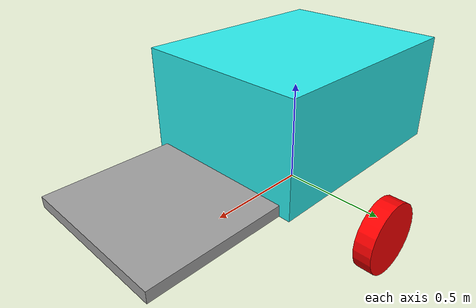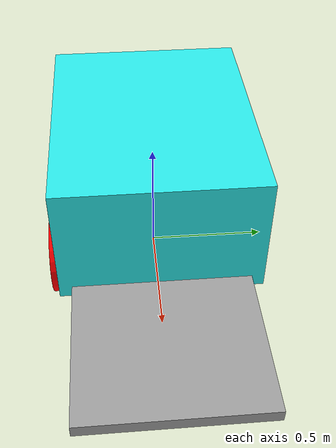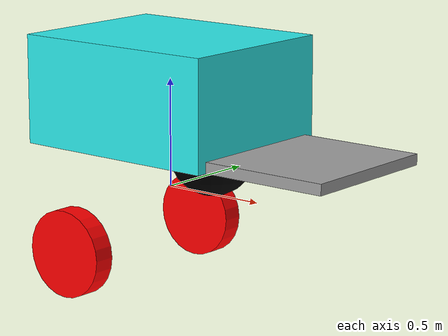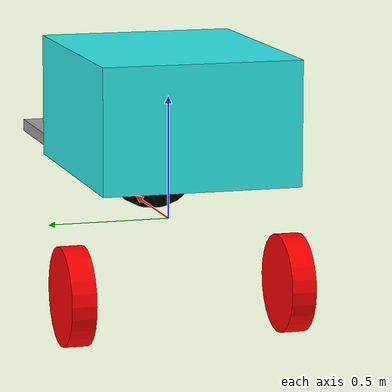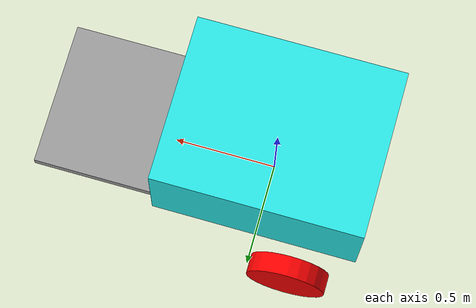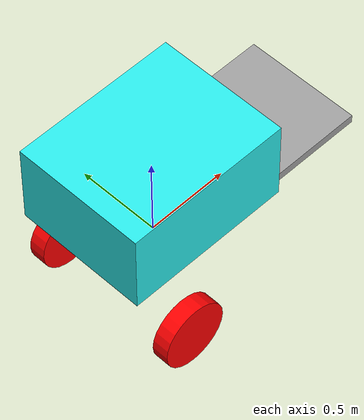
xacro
<?xml version="1.0"?>
<robot xmlns:xacro="http://www.ros.org/wiki/xacro">
    <xacro:include filename="inertial_macros.xacro" />

    <xacro:property name="chassis_m" value="20" />
    <xacro:property name="wheel_m" value="4" />
    <xacro:property name="caster_m" value="4" />
    <xacro:property name="fork_m" value="5" />
    <xacro:property name="chassis_x" value="1" />
    <xacro:property name="chassis_y" value="0.8" />
    <xacro:property name="chassis_z" value="0.5" />
    <xacro:property name="chassis_h" value="0.2" />
    <xacro:property name="wheel_l" value="0.1" />
    <xacro:property name="wheel_r" value="0.2" />
    <xacro:property name="caster_r" value="0.2" />
    <xacro:property name="fork_x" value="0.6" />
    <xacro:property name="fork_y" value="0.7" />
    <xacro:property name="fork_z" value="0.05" />
    <xacro:property name="fork_h" value="0.2" />

    <!-- BASE LINK -->

    <link name="base_link">

    </link>

    <!-- BASE FOOTPRINT LINK -->

    <link name="base_footprint">

    </link>
    <joint name="base_footprint_joint" type="fixed">
        <parent link="base_link"/>
        <child link="base_footprint"/>
        <origin xyz="0.0 0.0 0.0" rpy="0.0 0.0 0.0"/>
    </joint>

    <!-- CHASSIS LINK -->

    <joint name="chassis_joint" type="fixed">
        <parent link="base_link"/>
        <child link="chassis"/>
        <origin xyz="0.0 0.0 ${chassis_z/2+wheel_r}" rpy="0.0 0.0 0.0"/>
    </joint>

        <!-- LINK -->
    <link name="chassis">
        <xacro:inertial_box mass="${chassis_m}" x="${chassis_x}" y="${chassis_y}" z="${chassis_z}">
            <origin xyz="0 0.0 0" rpy="0 0 0"/>
        </xacro:inertial_box>
        <visual>
            <origin xyz="0.0 0.0 0" rpy="0 0 0"/>
            <geometry>
                <box size="${chassis_x} ${chassis_y} ${chassis_z}"/>
            </geometry>
            <material name="green">
                <color rgba="0.175 0.93 0.93 1"/>
            </material>
        </visual>
        <collision>
            <origin xyz="0.0 0.0 0" rpy="0 0 0"/>
            <geometry>
                <box size="${chassis_x} ${chassis_y} ${chassis_z}"/>
            </geometry>
        </collision>
    </link>

    <!-- LEFT WHEEL LINK -->

    <joint name="left_wheel_joint" type="continuous">
        <parent link="base_link"/>
        <child link="left_wheel"/>
        <origin xyz="${-chassis_x/5} ${chassis_y/2+wheel_l/2} ${wheel_r-chassis_h-chassis_z/2}" rpy="-1.5707 0.0 0.0"/>
        <axis xyz="0 0 1"/>
    </joint>

        <!-- LINK -->
    <link name="left_wheel">
        <xacro:inertial_cylinder mass="${wheel_m}" radius="${wheel_r}" length="${wheel_l}">
            <origin xyz="0.0 0.0 0" rpy="0 0 0"/>
        </xacro:inertial_cylinder>
        <visual>
            <origin xyz="0.0 0.0 0.0" rpy="0 0 0"/>
            <geometry>
                <cylinder radius="${wheel_r}" length="${wheel_l}"/>
            </geometry>
            <material name="red">
                <color rgba="1 0 0 1"/>
            </material>
        </visual>
        <collision>
            <origin xyz="0.0 0.0 0.0" rpy="0 0 0"/>
            <geometry>
                <cylinder radius="${wheel_r}" length="${wheel_l}"/>
            </geometry>
        </collision>
    </link>

    <!-- RIGHT WHEEL LINK -->

    <joint name="right_wheel_joint" type="continuous">
        <parent link="base_link"/>
        <child link="right_wheel"/>
        <origin xyz="${-chassis_x/5} ${-chassis_y/2-wheel_l/2} ${wheel_r-chassis_h-chassis_z/2}" rpy="-1.5707 0.0 0.0"/>
        <axis xyz="0 0 -1"/>
    </joint>

        <!-- LINK -->
    <link name="right_wheel">
        <xacro:inertial_cylinder mass="${wheel_m}" radius="${wheel_r}" length="${wheel_l}">
            <origin xyz="0.0 0 0" rpy="0 0 0"/>
        </xacro:inertial_cylinder>
        <visual>
            <origin xyz="0.0 0 0" rpy="0 0 0"/>
            <geometry>
                <cylinder radius="${wheel_r}" length="${wheel_l}"/>
            </geometry>
            <material name="red">
                <color rgba="1 0 0 1"/>
            </material>
        </visual>
        <collision>
            <origin xyz="0.0 0 0" rpy="0 0 0"/>
            <geometry>
                <cylinder radius="${wheel_r}" length="${wheel_l}"/>
            </geometry>
        </collision>
    </link>

    <!-- CASTER LINK -->

    <joint name="caster_joint" type="fixed">
        <parent link="chassis"/>
        <child link="caster"/>
        <origin xyz="${chassis_x/4} 0.0 ${caster_r-chassis_h-chassis_z/2}" rpy="0 0 0"/>
    </joint>

        <!-- LINK -->
    <link name="caster">
        <xacro:inertial_sphere mass="${caster_m}" radius="${caster_r}">
            <origin xyz="0.0 0.0 0" rpy="0 0 0"/>
        </xacro:inertial_sphere>
        <visual>
            <origin xyz="0 0.0 0" rpy="0 0 0"/>
            <geometry>
                <sphere radius="${caster_r}"/>
            </geometry>
            <material name="black">
                <color rgba="0 0 0 1"/>
            </material>
        </visual>
        <collision>
            <origin xyz="0 0.0 0" rpy="0 0 0"/>
            <geometry>
                <sphere radius="${caster_r}"/>
            </geometry>
        </collision>
    </link>

    <!-- FORK LINK -->

    <joint name="fork_joint" type="fixed">
        <parent link="chassis"/>
        <child link="fork"/>
        <origin xyz="${chassis_x/2+fork_x/2} 0.0 ${fork_z/2-chassis_z/2}" rpy="0.0 0.0 0.0"/>
    </joint>

        <!-- LINK -->
    <link name="fork">
        <xacro:inertial_box mass="${fork_m}" x="${fork_x}" y="${fork_y}" z="${fork_z}">
            <origin xyz="0.0 0.0 0.0" rpy="0 0 0"/>
        </xacro:inertial_box>
        <visual>
            <origin xyz="0.0 0 0" rpy="0 0 0"/>
            <geometry>
                <box size="${fork_x} ${fork_y} ${fork_z}"/>
            </geometry>
            <material name="grey">
                <color rgba="0.63 0.63 0.63 1"/>
            </material>
        </visual>
        <collision>
            <origin xyz="0.0 0 0" rpy="0 0 0"/>
            <geometry>
                <box size="${fork_x} ${fork_y} ${fork_z}"/>
            </geometry>
        </collision>
    </link>

    <gazebo reference="chassis">
        <material>Gazebo/SkyBlue</material>
    </gazebo>
    <gazebo reference="left_wheel">
        <material>Gazebo/Red</material>
    </gazebo>
    <gazebo reference="right_wheel">
        <material>Gazebo/Red</material>
    </gazebo>
    <gazebo reference="fork">
        <material>Gazebo/Grey</material>
    </gazebo>
    <gazebo reference="caster">
        <material>Gazebo/Black</material>
        <mu1 value="0.001"/>
        <mu2 value="0.001"/>
    </gazebo>

</robot>

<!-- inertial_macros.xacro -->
<robot xmlns:xacro="http://www.ros.org/wiki/xacro" >

    <!-- Specify some standard inertial calculations https://en.wikipedia.org/wiki/List_of_moments_of_inertia -->
    <!-- These make use of xacro's mathematical functionality -->

    <xacro:macro name="inertial_box" params="mass x y z *origin">
        <inertial>
            <xacro:insert_block name="origin"/>
            <mass value="${mass}"/>
            <inertia ixx="${(1/12) * mass * (y*y+z*z)}" ixy="0.0" ixz="0.0"
                    iyy="${(1/12) * mass * (x*x+z*z)}" iyz="0.0"
                    izz="${(1/12) * mass * (x*x+y*y)}" />
        </inertial>
    </xacro:macro>
    <xacro:macro name="inertial_cylinder" params="mass length radius *origin">
        <inertial>
            <xacro:insert_block name="origin"/>
            <mass value="${mass}"/>
            <inertia ixx="${(1/2) * mass * (radius*radius)}" ixy="0.0" ixz="0.0"
                    iyy="${mass * ((1/12) * (length*length) + (1/4) * (radius*radius))}" iyz="0.0"
                    izz="${mass * ((1/12) * (length*length) + (1/4) * (radius*radius))}" />
        </inertial>
    </xacro:macro>
    <xacro:macro name="inertial_sphere" params="mass radius *origin">
        <inertial>
            <xacro:insert_block name="origin"/>
            <mass value="${mass}"/>
            <inertia ixx="${(2/5) * mass * (radius*radius)}" ixy="0.0" ixz="0.0"
                    iyy="${(2/5) * mass * (radius*radius)}" iyz="0.0"
                    izz="${(2/5) * mass * (radius*radius)}" />
        </inertial>
    </xacro:macro>
</robot>
